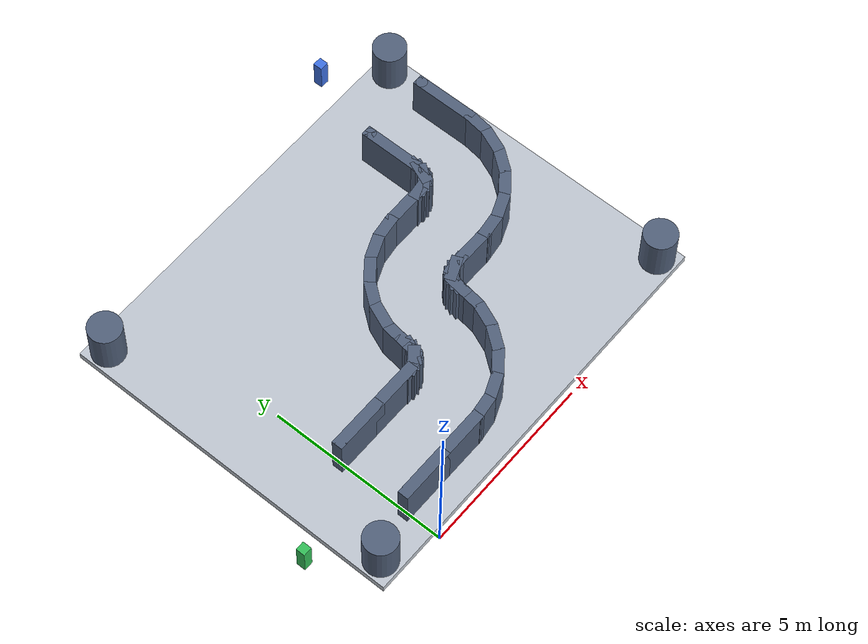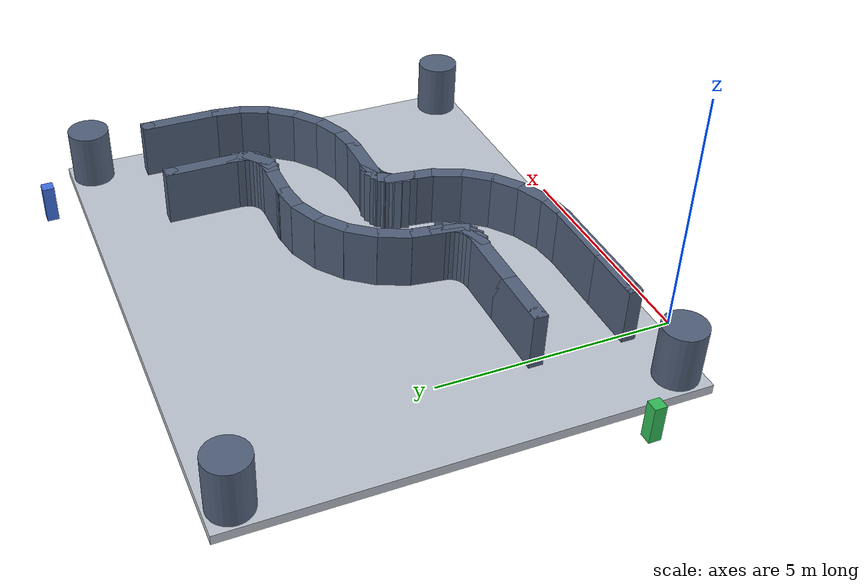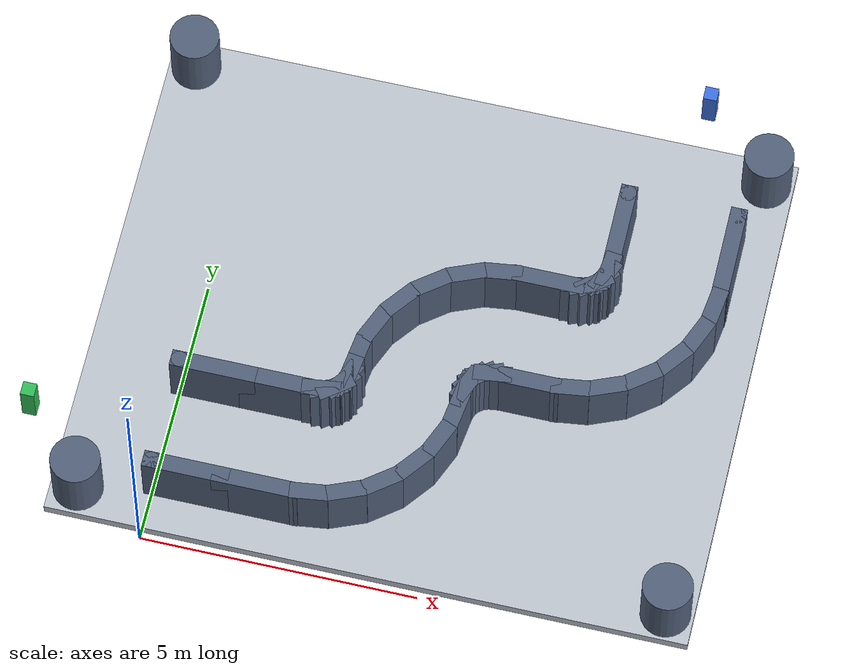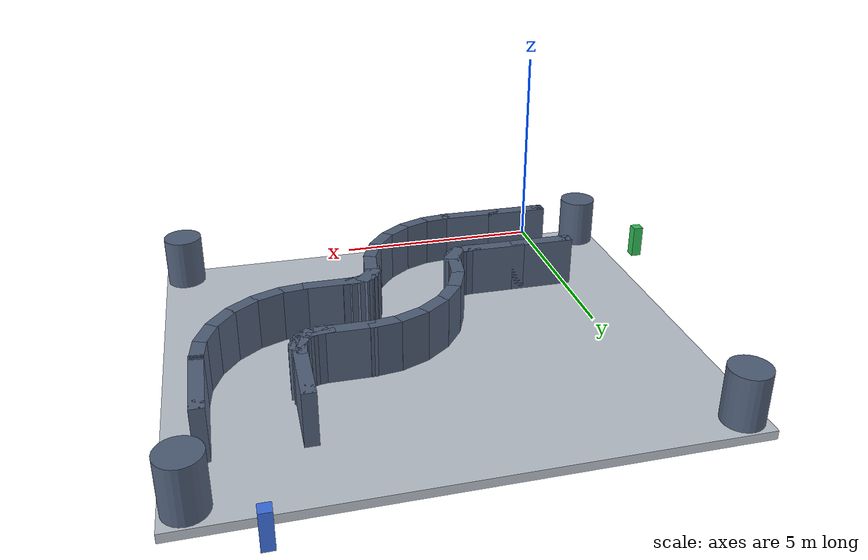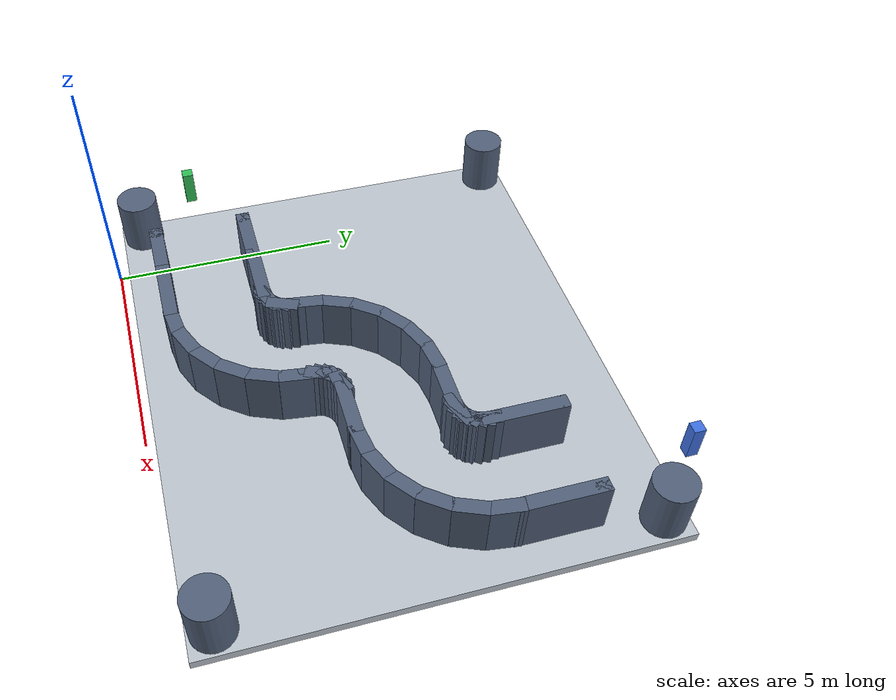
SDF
<?xml version="1.0"?>
<sdf version="1.6">
  <world name="z_maze">
    <light type="directional" name="sun">
      <pose>0 0 10 0 0 0</pose>
      <diffuse>0.8 0.8 0.8 1</diffuse>
      <specular>0.2 0.2 0.2 1</specular>
      <direction>-0.5 0.5 -1</direction>
    </light>
    <scene>
      <ambient>0.3 0.3 0.3 1</ambient>
      <background>0.7 0.7 0.7 1</background>
      <shadows>true</shadows>
    </scene>
    <model name="ground_plane">
      <static>true</static>
      <pose>4.000 5.000 -0.1 0 0 0</pose>
      <link name="link">
        <collision name="collision">
          <geometry><box><size>11.60 9.60 0.2</size></box></geometry>
          <surface>
            <friction><ode><mu>1</mu><mu2>1</mu2></ode></friction>
          </surface>
        </collision>
        <visual name="visual">
          <geometry><box><size>11.60 9.60 0.2</size></box></geometry>
          <material>
            <ambient>0.75 0.78 0.82 1</ambient>
            <diffuse>0.75 0.78 0.82 1</diffuse>
          </material>
        </visual>
      </link>
    </model>
    <!-- ============ 迷宫墙体（深蓝灰；box 墙段 + 圆柱圆头） ============ -->
    <model name="wall_00">
      <static>true</static>
      <pose>0.625 3.000 0.600 0 0 0.0000</pose>
      <link name="link">
        <collision name="collision">
          <geometry><box><size>1.550 0.300 1.2</size></box></geometry>
        </collision>
        <visual name="visual">
          <geometry><box><size>1.550 0.300 1.2</size></box></geometry>
          <material><ambient>0.32 0.38 0.48 1</ambient><diffuse>0.32 0.38 0.48 1</diffuse></material>
        </visual>
      </link>
    </model>
    <model name="wall_01">
      <static>true</static>
      <pose>0.625 1.000 0.600 0 0 0.0000</pose>
      <link name="link">
        <collision name="collision">
          <geometry><box><size>1.550 0.300 1.2</size></box></geometry>
        </collision>
        <visual name="visual">
          <geometry><box><size>1.550 0.300 1.2</size></box></geometry>
          <material><ambient>0.32 0.38 0.48 1</ambient><diffuse>0.32 0.38 0.48 1</diffuse></material>
        </visual>
      </link>
    </model>
    <model name="wall_02">
      <static>true</static>
      <pose>1.875 3.000 0.600 0 0 0.0000</pose>
      <link name="link">
        <collision name="collision">
          <geometry><box><size>1.550 0.300 1.2</size></box></geometry>
        </collision>
        <visual name="visual">
          <geometry><box><size>1.550 0.300 1.2</size></box></geometry>
          <material><ambient>0.32 0.38 0.48 1</ambient><diffuse>0.32 0.38 0.48 1</diffuse></material>
        </visual>
      </link>
    </model>
    <model name="wall_03">
      <static>true</static>
      <pose>1.875 1.000 0.600 0 0 0.0000</pose>
      <link name="link">
        <collision name="collision">
          <geometry><box><size>1.550 0.300 1.2</size></box></geometry>
        </collision>
        <visual name="visual">
          <geometry><box><size>1.550 0.300 1.2</size></box></geometry>
          <material><ambient>0.32 0.38 0.48 1</ambient><diffuse>0.32 0.38 0.48 1</diffuse></material>
        </visual>
      </link>
    </model>
    <model name="wall_04">
      <static>true</static>
      <pose>2.564 3.017 0.600 0 0 0.1309</pose>
      <link name="link">
        <collision name="collision">
          <geometry><box><size>0.692 0.300 1.2</size></box></geometry>
        </collision>
        <visual name="visual">
          <geometry><box><size>0.692 0.300 1.2</size></box></geometry>
          <material><ambient>0.32 0.38 0.48 1</ambient><diffuse>0.32 0.38 0.48 1</diffuse></material>
        </visual>
      </link>
    </model>
    <model name="wall_05">
      <static>true</static>
      <pose>2.825 1.034 0.600 0 0 0.1309</pose>
      <link name="link">
        <collision name="collision">
          <geometry><box><size>0.692 0.300 1.2</size></box></geometry>
        </collision>
        <visual name="visual">
          <geometry><box><size>0.692 0.300 1.2</size></box></geometry>
          <material><ambient>0.32 0.38 0.48 1</ambient><diffuse>0.32 0.38 0.48 1</diffuse></material>
        </visual>
      </link>
    </model>
    <model name="wall_06">
      <static>true</static>
      <pose>2.686 3.050 0.600 0 0 0.3927</pose>
      <link name="link">
        <collision name="collision">
          <geometry><box><size>0.692 0.300 1.2</size></box></geometry>
        </collision>
        <visual name="visual">
          <geometry><box><size>0.692 0.300 1.2</size></box></geometry>
          <material><ambient>0.32 0.38 0.48 1</ambient><diffuse>0.32 0.38 0.48 1</diffuse></material>
        </visual>
      </link>
    </model>
    <model name="wall_07">
      <static>true</static>
      <pose>3.452 1.202 0.600 0 0 0.3927</pose>
      <link name="link">
        <collision name="collision">
          <geometry><box><size>0.692 0.300 1.2</size></box></geometry>
        </collision>
        <visual name="visual">
          <geometry><box><size>0.692 0.300 1.2</size></box></geometry>
          <material><ambient>0.32 0.38 0.48 1</ambient><diffuse>0.32 0.38 0.48 1</diffuse></material>
        </visual>
      </link>
    </model>
    <model name="wall_08">
      <static>true</static>
      <pose>2.797 3.114 0.600 0 0 0.6545</pose>
      <link name="link">
        <collision name="collision">
          <geometry><box><size>0.692 0.300 1.2</size></box></geometry>
        </collision>
        <visual name="visual">
          <geometry><box><size>0.692 0.300 1.2</size></box></geometry>
          <material><ambient>0.32 0.38 0.48 1</ambient><diffuse>0.32 0.38 0.48 1</diffuse></material>
        </visual>
      </link>
    </model>
    <model name="wall_09">
      <static>true</static>
      <pose>4.014 1.527 0.600 0 0 0.6545</pose>
      <link name="link">
        <collision name="collision">
          <geometry><box><size>0.692 0.300 1.2</size></box></geometry>
        </collision>
        <visual name="visual">
          <geometry><box><size>0.692 0.300 1.2</size></box></geometry>
          <material><ambient>0.32 0.38 0.48 1</ambient><diffuse>0.32 0.38 0.48 1</diffuse></material>
        </visual>
      </link>
    </model>
    <model name="wall_10">
      <static>true</static>
      <pose>2.886 3.203 0.600 0 0 0.9163</pose>
      <link name="link">
        <collision name="collision">
          <geometry><box><size>0.692 0.300 1.2</size></box></geometry>
        </collision>
        <visual name="visual">
          <geometry><box><size>0.692 0.300 1.2</size></box></geometry>
          <material><ambient>0.32 0.38 0.48 1</ambient><diffuse>0.32 0.38 0.48 1</diffuse></material>
        </visual>
      </link>
    </model>
    <model name="wall_11">
      <static>true</static>
      <pose>4.473 1.986 0.600 0 0 0.9163</pose>
      <link name="link">
        <collision name="collision">
          <geometry><box><size>0.692 0.300 1.2</size></box></geometry>
        </collision>
        <visual name="visual">
          <geometry><box><size>0.692 0.300 1.2</size></box></geometry>
          <material><ambient>0.32 0.38 0.48 1</ambient><diffuse>0.32 0.38 0.48 1</diffuse></material>
        </visual>
      </link>
    </model>
    <model name="wall_12">
      <static>true</static>
      <pose>2.950 3.314 0.600 0 0 1.1781</pose>
      <link name="link">
        <collision name="collision">
          <geometry><box><size>0.692 0.300 1.2</size></box></geometry>
        </collision>
        <visual name="visual">
          <geometry><box><size>0.692 0.300 1.2</size></box></geometry>
          <material><ambient>0.32 0.38 0.48 1</ambient><diffuse>0.32 0.38 0.48 1</diffuse></material>
        </visual>
      </link>
    </model>
    <model name="wall_13">
      <static>true</static>
      <pose>4.798 2.548 0.600 0 0 1.1781</pose>
      <link name="link">
        <collision name="collision">
          <geometry><box><size>0.692 0.300 1.2</size></box></geometry>
        </collision>
        <visual name="visual">
          <geometry><box><size>0.692 0.300 1.2</size></box></geometry>
          <material><ambient>0.32 0.38 0.48 1</ambient><diffuse>0.32 0.38 0.48 1</diffuse></material>
        </visual>
      </link>
    </model>
    <model name="wall_14">
      <static>true</static>
      <pose>2.983 3.436 0.600 0 0 1.4399</pose>
      <link name="link">
        <collision name="collision">
          <geometry><box><size>0.692 0.300 1.2</size></box></geometry>
        </collision>
        <visual name="visual">
          <geometry><box><size>0.692 0.300 1.2</size></box></geometry>
          <material><ambient>0.32 0.38 0.48 1</ambient><diffuse>0.32 0.38 0.48 1</diffuse></material>
        </visual>
      </link>
    </model>
    <model name="wall_15">
      <static>true</static>
      <pose>4.966 3.175 0.600 0 0 1.4399</pose>
      <link name="link">
        <collision name="collision">
          <geometry><box><size>0.692 0.300 1.2</size></box></geometry>
        </collision>
        <visual name="visual">
          <geometry><box><size>0.692 0.300 1.2</size></box></geometry>
          <material><ambient>0.32 0.38 0.48 1</ambient><diffuse>0.32 0.38 0.48 1</diffuse></material>
        </visual>
      </link>
    </model>
    <model name="wall_16">
      <static>true</static>
      <pose>3.034 3.825 0.600 0 0 1.4399</pose>
      <link name="link">
        <collision name="collision">
          <geometry><box><size>0.692 0.300 1.2</size></box></geometry>
        </collision>
        <visual name="visual">
          <geometry><box><size>0.692 0.300 1.2</size></box></geometry>
          <material><ambient>0.32 0.38 0.48 1</ambient><diffuse>0.32 0.38 0.48 1</diffuse></material>
        </visual>
      </link>
    </model>
    <model name="wall_17">
      <static>true</static>
      <pose>5.017 3.564 0.600 0 0 1.4399</pose>
      <link name="link">
        <collision name="collision">
          <geometry><box><size>0.692 0.300 1.2</size></box></geometry>
        </collision>
        <visual name="visual">
          <geometry><box><size>0.692 0.300 1.2</size></box></geometry>
          <material><ambient>0.32 0.38 0.48 1</ambient><diffuse>0.32 0.38 0.48 1</diffuse></material>
        </visual>
      </link>
    </model>
    <model name="wall_18">
      <static>true</static>
      <pose>3.202 4.452 0.600 0 0 1.1781</pose>
      <link name="link">
        <collision name="collision">
          <geometry><box><size>0.692 0.300 1.2</size></box></geometry>
        </collision>
        <visual name="visual">
          <geometry><box><size>0.692 0.300 1.2</size></box></geometry>
          <material><ambient>0.32 0.38 0.48 1</ambient><diffuse>0.32 0.38 0.48 1</diffuse></material>
        </visual>
      </link>
    </model>
    <model name="wall_19">
      <static>true</static>
      <pose>5.050 3.686 0.600 0 0 1.1781</pose>
      <link name="link">
        <collision name="collision">
          <geometry><box><size>0.692 0.300 1.2</size></box></geometry>
        </collision>
        <visual name="visual">
          <geometry><box><size>0.692 0.300 1.2</size></box></geometry>
          <material><ambient>0.32 0.38 0.48 1</ambient><diffuse>0.32 0.38 0.48 1</diffuse></material>
        </visual>
      </link>
    </model>
    <model name="wall_20">
      <static>true</static>
      <pose>3.527 5.014 0.600 0 0 0.9163</pose>
      <link name="link">
        <collision name="collision">
          <geometry><box><size>0.692 0.300 1.2</size></box></geometry>
        </collision>
        <visual name="visual">
          <geometry><box><size>0.692 0.300 1.2</size></box></geometry>
          <material><ambient>0.32 0.38 0.48 1</ambient><diffuse>0.32 0.38 0.48 1</diffuse></material>
        </visual>
      </link>
    </model>
    <model name="wall_21">
      <static>true</static>
      <pose>5.114 3.797 0.600 0 0 0.9163</pose>
      <link name="link">
        <collision name="collision">
          <geometry><box><size>0.692 0.300 1.2</size></box></geometry>
        </collision>
        <visual name="visual">
          <geometry><box><size>0.692 0.300 1.2</size></box></geometry>
          <material><ambient>0.32 0.38 0.48 1</ambient><diffuse>0.32 0.38 0.48 1</diffuse></material>
        </visual>
      </link>
    </model>
    <model name="wall_22">
      <static>true</static>
      <pose>3.986 5.473 0.600 0 0 0.6545</pose>
      <link name="link">
        <collision name="collision">
          <geometry><box><size>0.692 0.300 1.2</size></box></geometry>
        </collision>
        <visual name="visual">
          <geometry><box><size>0.692 0.300 1.2</size></box></geometry>
          <material><ambient>0.32 0.38 0.48 1</ambient><diffuse>0.32 0.38 0.48 1</diffuse></material>
        </visual>
      </link>
    </model>
    <model name="wall_23">
      <static>true</static>
      <pose>5.203 3.886 0.600 0 0 0.6545</pose>
      <link name="link">
        <collision name="collision">
          <geometry><box><size>0.692 0.300 1.2</size></box></geometry>
        </collision>
        <visual name="visual">
          <geometry><box><size>0.692 0.300 1.2</size></box></geometry>
          <material><ambient>0.32 0.38 0.48 1</ambient><diffuse>0.32 0.38 0.48 1</diffuse></material>
        </visual>
      </link>
    </model>
    <model name="wall_24">
      <static>true</static>
      <pose>4.548 5.798 0.600 0 0 0.3927</pose>
      <link name="link">
        <collision name="collision">
          <geometry><box><size>0.692 0.300 1.2</size></box></geometry>
        </collision>
        <visual name="visual">
          <geometry><box><size>0.692 0.300 1.2</size></box></geometry>
          <material><ambient>0.32 0.38 0.48 1</ambient><diffuse>0.32 0.38 0.48 1</diffuse></material>
        </visual>
      </link>
    </model>
    <model name="wall_25">
      <static>true</static>
      <pose>5.314 3.950 0.600 0 0 0.3927</pose>
      <link name="link">
        <collision name="collision">
          <geometry><box><size>0.692 0.300 1.2</size></box></geometry>
        </collision>
        <visual name="visual">
          <geometry><box><size>0.692 0.300 1.2</size></box></geometry>
          <material><ambient>0.32 0.38 0.48 1</ambient><diffuse>0.32 0.38 0.48 1</diffuse></material>
        </visual>
      </link>
    </model>
    <model name="wall_26">
      <static>true</static>
      <pose>5.175 5.966 0.600 0 0 0.1309</pose>
      <link name="link">
        <collision name="collision">
          <geometry><box><size>0.692 0.300 1.2</size></box></geometry>
        </collision>
        <visual name="visual">
          <geometry><box><size>0.692 0.300 1.2</size></box></geometry>
          <material><ambient>0.32 0.38 0.48 1</ambient><diffuse>0.32 0.38 0.48 1</diffuse></material>
        </visual>
      </link>
    </model>
    <model name="wall_27">
      <static>true</static>
      <pose>5.436 3.983 0.600 0 0 0.1309</pose>
      <link name="link">
        <collision name="collision">
          <geometry><box><size>0.692 0.300 1.2</size></box></geometry>
        </collision>
        <visual name="visual">
          <geometry><box><size>0.692 0.300 1.2</size></box></geometry>
          <material><ambient>0.32 0.38 0.48 1</ambient><diffuse>0.32 0.38 0.48 1</diffuse></material>
        </visual>
      </link>
    </model>
    <model name="wall_28">
      <static>true</static>
      <pose>6.000 6.000 0.600 0 0 0.0000</pose>
      <link name="link">
        <collision name="collision">
          <geometry><box><size>1.300 0.300 1.2</size></box></geometry>
        </collision>
        <visual name="visual">
          <geometry><box><size>1.300 0.300 1.2</size></box></geometry>
          <material><ambient>0.32 0.38 0.48 1</ambient><diffuse>0.32 0.38 0.48 1</diffuse></material>
        </visual>
      </link>
    </model>
    <model name="wall_29">
      <static>true</static>
      <pose>6.000 4.000 0.600 0 0 0.0000</pose>
      <link name="link">
        <collision name="collision">
          <geometry><box><size>1.300 0.300 1.2</size></box></geometry>
        </collision>
        <visual name="visual">
          <geometry><box><size>1.300 0.300 1.2</size></box></geometry>
          <material><ambient>0.32 0.38 0.48 1</ambient><diffuse>0.32 0.38 0.48 1</diffuse></material>
        </visual>
      </link>
    </model>
    <model name="wall_30">
      <static>true</static>
      <pose>6.564 6.017 0.600 0 0 0.1309</pose>
      <link name="link">
        <collision name="collision">
          <geometry><box><size>0.692 0.300 1.2</size></box></geometry>
        </collision>
        <visual name="visual">
          <geometry><box><size>0.692 0.300 1.2</size></box></geometry>
          <material><ambient>0.32 0.38 0.48 1</ambient><diffuse>0.32 0.38 0.48 1</diffuse></material>
        </visual>
      </link>
    </model>
    <model name="wall_31">
      <static>true</static>
      <pose>6.825 4.034 0.600 0 0 0.1309</pose>
      <link name="link">
        <collision name="collision">
          <geometry><box><size>0.692 0.300 1.2</size></box></geometry>
        </collision>
        <visual name="visual">
          <geometry><box><size>0.692 0.300 1.2</size></box></geometry>
          <material><ambient>0.32 0.38 0.48 1</ambient><diffuse>0.32 0.38 0.48 1</diffuse></material>
        </visual>
      </link>
    </model>
    <model name="wall_32">
      <static>true</static>
      <pose>6.686 6.050 0.600 0 0 0.3927</pose>
      <link name="link">
        <collision name="collision">
          <geometry><box><size>0.692 0.300 1.2</size></box></geometry>
        </collision>
        <visual name="visual">
          <geometry><box><size>0.692 0.300 1.2</size></box></geometry>
          <material><ambient>0.32 0.38 0.48 1</ambient><diffuse>0.32 0.38 0.48 1</diffuse></material>
        </visual>
      </link>
    </model>
    <model name="wall_33">
      <static>true</static>
      <pose>7.452 4.202 0.600 0 0 0.3927</pose>
      <link name="link">
        <collision name="collision">
          <geometry><box><size>0.692 0.300 1.2</size></box></geometry>
        </collision>
        <visual name="visual">
          <geometry><box><size>0.692 0.300 1.2</size></box></geometry>
          <material><ambient>0.32 0.38 0.48 1</ambient><diffuse>0.32 0.38 0.48 1</diffuse></material>
        </visual>
      </link>
    </model>
    <model name="wall_34">
      <static>true</static>
      <pose>6.797 6.114 0.600 0 0 0.6545</pose>
      <link name="link">
        <collision name="collision">
          <geometry><box><size>0.692 0.300 1.2</size></box></geometry>
        </collision>
        <visual name="visual">
          <geometry><box><size>0.692 0.300 1.2</size></box></geometry>
          <material><ambient>0.32 0.38 0.48 1</ambient><diffuse>0.32 0.38 0.48 1</diffuse></material>
        </visual>
      </link>
    </model>
    <model name="wall_35">
      <static>true</static>
      <pose>8.014 4.527 0.600 0 0 0.6545</pose>
      <link name="link">
        <collision name="collision">
          <geometry><box><size>0.692 0.300 1.2</size></box></geometry>
        </collision>
        <visual name="visual">
          <geometry><box><size>0.692 0.300 1.2</size></box></geometry>
          <material><ambient>0.32 0.38 0.48 1</ambient><diffuse>0.32 0.38 0.48 1</diffuse></material>
        </visual>
      </link>
    </model>
    <model name="wall_36">
      <static>true</static>
      <pose>6.886 6.203 0.600 0 0 0.9163</pose>
      <link name="link">
        <collision name="collision">
          <geometry><box><size>0.692 0.300 1.2</size></box></geometry>
        </collision>
        <visual name="visual">
          <geometry><box><size>0.692 0.300 1.2</size></box></geometry>
          <material><ambient>0.32 0.38 0.48 1</ambient><diffuse>0.32 0.38 0.48 1</diffuse></material>
        </visual>
      </link>
    </model>
    <model name="wall_37">
      <static>true</static>
      <pose>8.473 4.986 0.600 0 0 0.9163</pose>
      <link name="link">
        <collision name="collision">
          <geometry><box><size>0.692 0.300 1.2</size></box></geometry>
        </collision>
        <visual name="visual">
          <geometry><box><size>0.692 0.300 1.2</size></box></geometry>
          <material><ambient>0.32 0.38 0.48 1</ambient><diffuse>0.32 0.38 0.48 1</diffuse></material>
        </visual>
      </link>
    </model>
    <model name="wall_38">
      <static>true</static>
      <pose>6.950 6.314 0.600 0 0 1.1781</pose>
      <link name="link">
        <collision name="collision">
          <geometry><box><size>0.692 0.300 1.2</size></box></geometry>
        </collision>
        <visual name="visual">
          <geometry><box><size>0.692 0.300 1.2</size></box></geometry>
          <material><ambient>0.32 0.38 0.48 1</ambient><diffuse>0.32 0.38 0.48 1</diffuse></material>
        </visual>
      </link>
    </model>
    <model name="wall_39">
      <static>true</static>
      <pose>8.798 5.548 0.600 0 0 1.1781</pose>
      <link name="link">
        <collision name="collision">
          <geometry><box><size>0.692 0.300 1.2</size></box></geometry>
        </collision>
        <visual name="visual">
          <geometry><box><size>0.692 0.300 1.2</size></box></geometry>
          <material><ambient>0.32 0.38 0.48 1</ambient><diffuse>0.32 0.38 0.48 1</diffuse></material>
        </visual>
      </link>
    </model>
    <model name="wall_40">
      <static>true</static>
      <pose>6.983 6.436 0.600 0 0 1.4399</pose>
      <link name="link">
        <collision name="collision">
          <geometry><box><size>0.692 0.300 1.2</size></box></geometry>
        </collision>
        <visual name="visual">
          <geometry><box><size>0.692 0.300 1.2</size></box></geometry>
          <material><ambient>0.32 0.38 0.48 1</ambient><diffuse>0.32 0.38 0.48 1</diffuse></material>
        </visual>
      </link>
    </model>
    <model name="wall_41">
      <static>true</static>
      <pose>8.966 6.175 0.600 0 0 1.4399</pose>
      <link name="link">
        <collision name="collision">
          <geometry><box><size>0.692 0.300 1.2</size></box></geometry>
        </collision>
        <visual name="visual">
          <geometry><box><size>0.692 0.300 1.2</size></box></geometry>
          <material><ambient>0.32 0.38 0.48 1</ambient><diffuse>0.32 0.38 0.48 1</diffuse></material>
        </visual>
      </link>
    </model>
    <model name="wall_42">
      <static>true</static>
      <pose>7.000 7.250 0.600 0 0 1.5708</pose>
      <link name="link">
        <collision name="collision">
          <geometry><box><size>1.800 0.300 1.2</size></box></geometry>
        </collision>
        <visual name="visual">
          <geometry><box><size>1.800 0.300 1.2</size></box></geometry>
          <material><ambient>0.32 0.38 0.48 1</ambient><diffuse>0.32 0.38 0.48 1</diffuse></material>
        </visual>
      </link>
    </model>
    <model name="wall_43">
      <static>true</static>
      <pose>9.000 7.250 0.600 0 0 1.5708</pose>
      <link name="link">
        <collision name="collision">
          <geometry><box><size>1.800 0.300 1.2</size></box></geometry>
        </collision>
        <visual name="visual">
          <geometry><box><size>1.800 0.300 1.2</size></box></geometry>
          <material><ambient>0.32 0.38 0.48 1</ambient><diffuse>0.32 0.38 0.48 1</diffuse></material>
        </visual>
      </link>
    </model>
    <model name="pillar_00">
      <static>true</static>
      <pose>0.000 3.000 0.600 0 0 0</pose>
      <link name="link">
        <collision name="collision">
          <geometry><cylinder><radius>0.150</radius><length>1.2</length></cylinder></geometry>
        </collision>
        <visual name="visual">
          <geometry><cylinder><radius>0.150</radius><length>1.2</length></cylinder></geometry>
          <material><ambient>0.32 0.38 0.48 1</ambient><diffuse>0.32 0.38 0.48 1</diffuse></material>
        </visual>
      </link>
    </model>
    <model name="pillar_01">
      <static>true</static>
      <pose>7.000 8.000 0.600 0 0 0</pose>
      <link name="link">
        <collision name="collision">
          <geometry><cylinder><radius>0.150</radius><length>1.2</length></cylinder></geometry>
        </collision>
        <visual name="visual">
          <geometry><cylinder><radius>0.150</radius><length>1.2</length></cylinder></geometry>
          <material><ambient>0.32 0.38 0.48 1</ambient><diffuse>0.32 0.38 0.48 1</diffuse></material>
        </visual>
      </link>
    </model>
    <model name="pillar_02">
      <static>true</static>
      <pose>0.000 1.000 0.600 0 0 0</pose>
      <link name="link">
        <collision name="collision">
          <geometry><cylinder><radius>0.150</radius><length>1.2</length></cylinder></geometry>
        </collision>
        <visual name="visual">
          <geometry><cylinder><radius>0.150</radius><length>1.2</length></cylinder></geometry>
          <material><ambient>0.32 0.38 0.48 1</ambient><diffuse>0.32 0.38 0.48 1</diffuse></material>
        </visual>
      </link>
    </model>
    <model name="pillar_03">
      <static>true</static>
      <pose>9.000 8.000 0.600 0 0 0</pose>
      <link name="link">
        <collision name="collision">
          <geometry><cylinder><radius>0.150</radius><length>1.2</length></cylinder></geometry>
        </collision>
        <visual name="visual">
          <geometry><cylinder><radius>0.150</radius><length>1.2</length></cylinder></geometry>
          <material><ambient>0.32 0.38 0.48 1</ambient><diffuse>0.32 0.38 0.48 1</diffuse></material>
        </visual>
      </link>
    </model>
    <model name="pillar_04">
      <static>true</static>
      <pose>-1.300 0.700 0.600 0 0 0</pose>
      <link name="link">
        <collision name="collision">
          <geometry><cylinder><radius>0.450</radius><length>1.2</length></cylinder></geometry>
        </collision>
        <visual name="visual">
          <geometry><cylinder><radius>0.450</radius><length>1.2</length></cylinder></geometry>
          <material><ambient>0.32 0.38 0.48 1</ambient><diffuse>0.32 0.38 0.48 1</diffuse></material>
        </visual>
      </link>
    </model>
    <model name="pillar_05">
      <static>true</static>
      <pose>-1.300 9.300 0.600 0 0 0</pose>
      <link name="link">
        <collision name="collision">
          <geometry><cylinder><radius>0.450</radius><length>1.2</length></cylinder></geometry>
        </collision>
        <visual name="visual">
          <geometry><cylinder><radius>0.450</radius><length>1.2</length></cylinder></geometry>
          <material><ambient>0.32 0.38 0.48 1</ambient><diffuse>0.32 0.38 0.48 1</diffuse></material>
        </visual>
      </link>
    </model>
    <model name="pillar_06">
      <static>true</static>
      <pose>9.300 0.700 0.600 0 0 0</pose>
      <link name="link">
        <collision name="collision">
          <geometry><cylinder><radius>0.450</radius><length>1.2</length></cylinder></geometry>
        </collision>
        <visual name="visual">
          <geometry><cylinder><radius>0.450</radius><length>1.2</length></cylinder></geometry>
          <material><ambient>0.32 0.38 0.48 1</ambient><diffuse>0.32 0.38 0.48 1</diffuse></material>
        </visual>
      </link>
    </model>
    <model name="pillar_07">
      <static>true</static>
      <pose>9.300 9.300 0.600 0 0 0</pose>
      <link name="link">
        <collision name="collision">
          <geometry><cylinder><radius>0.450</radius><length>1.2</length></cylinder></geometry>
        </collision>
        <visual name="visual">
          <geometry><cylinder><radius>0.450</radius><length>1.2</length></cylinder></geometry>
          <material><ambient>0.32 0.38 0.48 1</ambient><diffuse>0.32 0.38 0.48 1</diffuse></material>
        </visual>
      </link>
    </model>
    <!-- ============ 起终点标记柱 ============ -->
    <model name="marker_entry">
      <static>true</static>
      <pose>-2.500 2.000 0.4 0 0 0</pose>
      <link name="link">
        <collision name="collision">
          <geometry><box><size>0.25 0.25 0.8</size></box></geometry>
        </collision>
        <visual name="visual">
          <geometry><box><size>0.25 0.25 0.8</size></box></geometry>
          <material><ambient>0.2 0.75 0.35 1</ambient><diffuse>0.2 0.75 0.35 1</diffuse></material>
        </visual>
      </link>
    </model>
    <model name="marker_exit">
      <static>true</static>
      <pose>8.000 10.500 0.4 0 0 0</pose>
      <link name="link">
        <collision name="collision">
          <geometry><box><size>0.25 0.25 0.8</size></box></geometry>
        </collision>
        <visual name="visual">
          <geometry><box><size>0.25 0.25 0.8</size></box></geometry>
          <material><ambient>0.25 0.45 0.9 1</ambient><diffuse>0.25 0.45 0.9 1</diffuse></material>
        </visual>
      </link>
    </model>
  </world>
</sdf>
